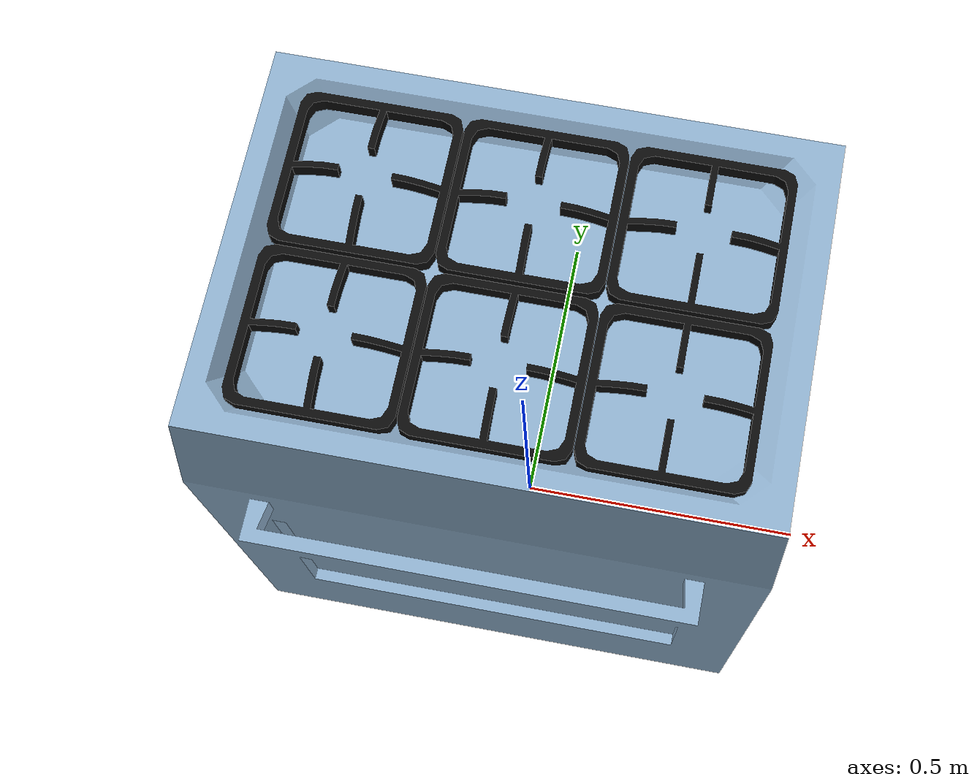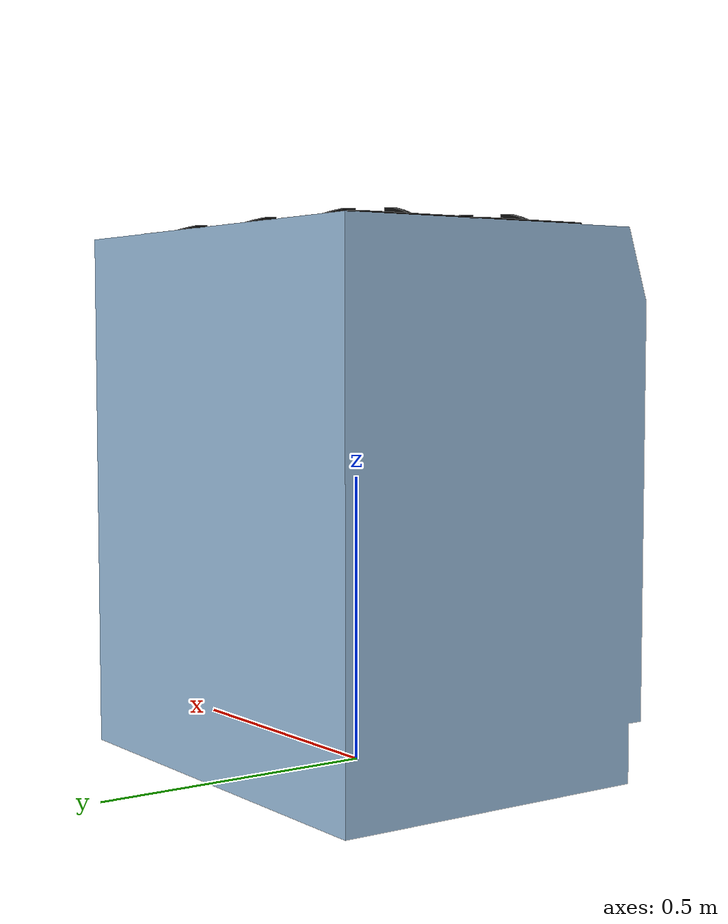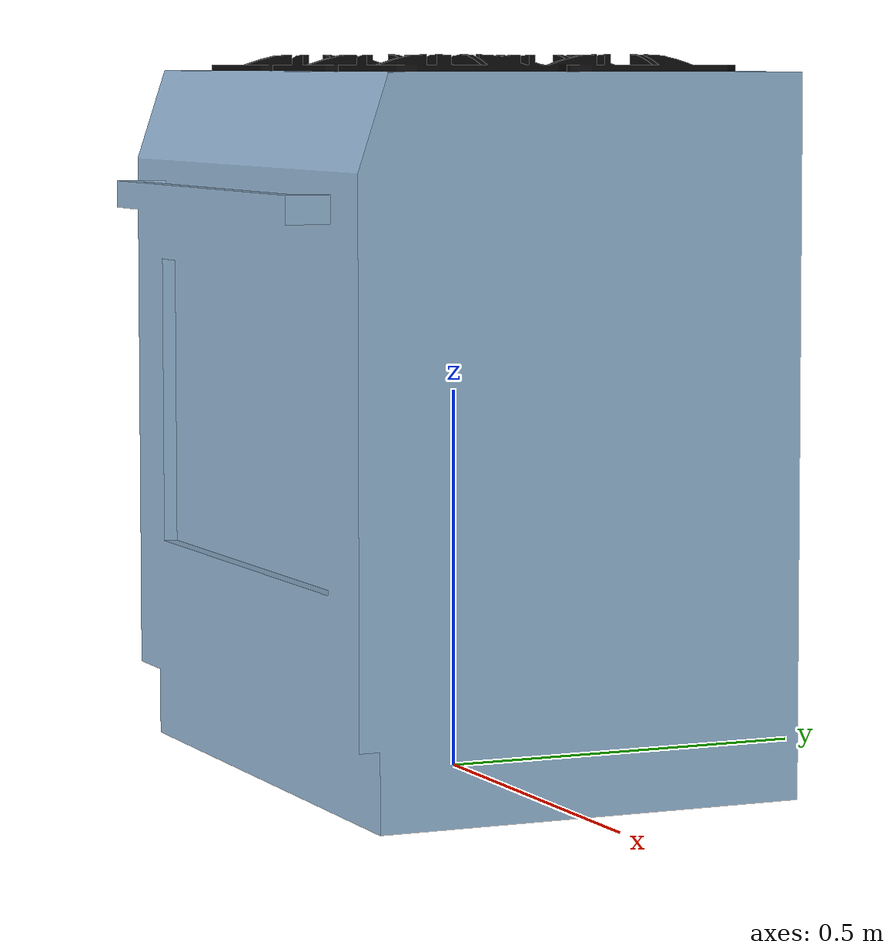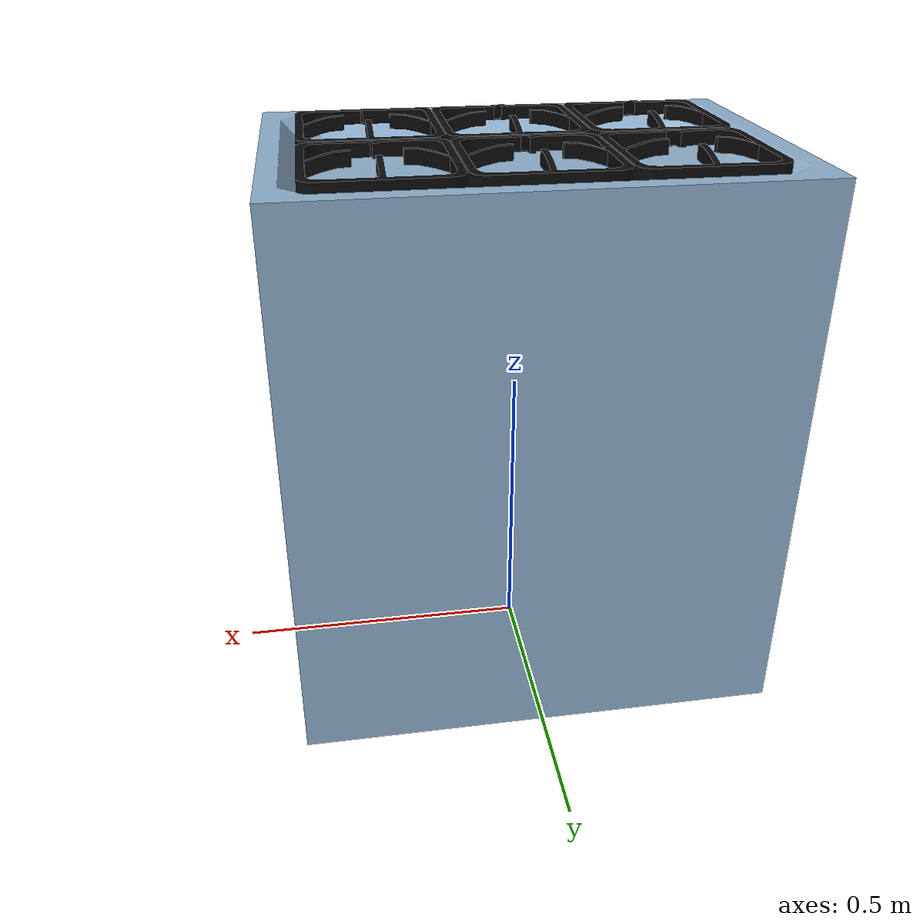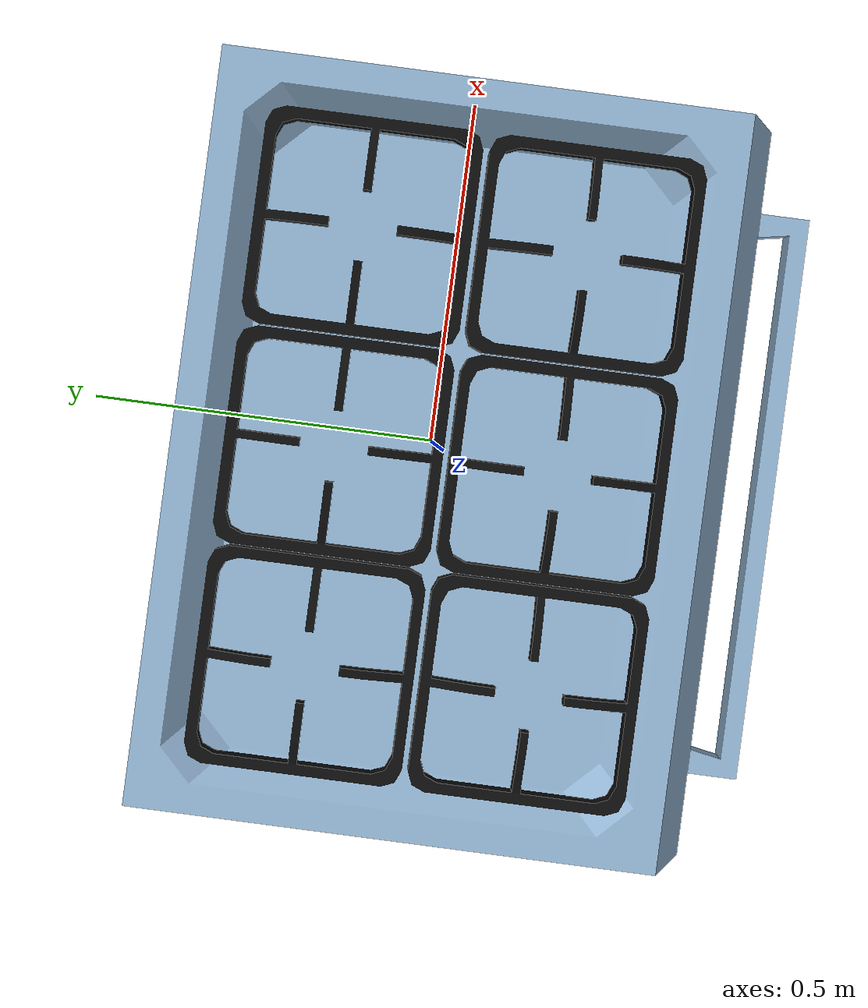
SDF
<?xml version='1.0'?>
<sdf version="1.4">
	<model name="stove">
		<static>1</static>
		<link name="link">
			<visual name="mesh">
				<geometry>
					<mesh>
						<uri>model://meshes/stove.dae</uri>
					</mesh>
				</geometry>
			</visual>
			<collision name="collider">
				<pose>0 0 0.46 0 0 0</pose>
				<geometry>
					<box>
						<size>0.8 0.66 0.92</size>
					</box>
				</geometry>
			</collision>
		</link>
	</model>
</sdf>
